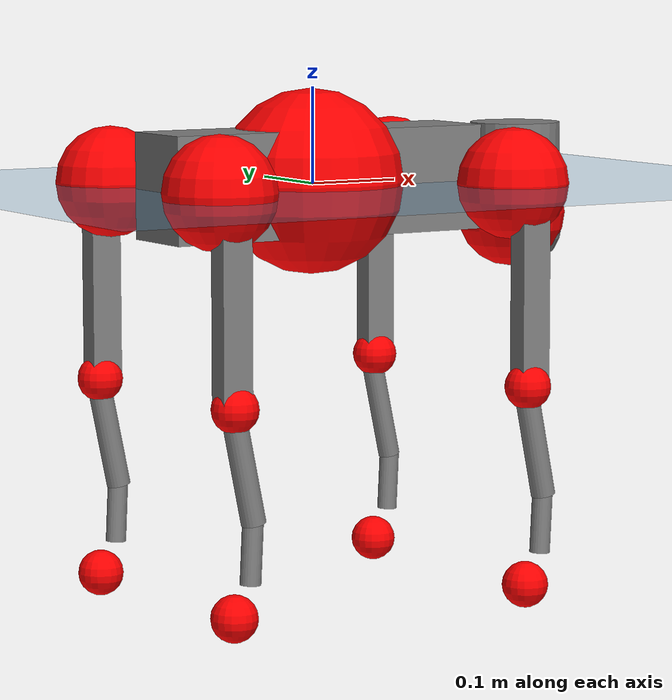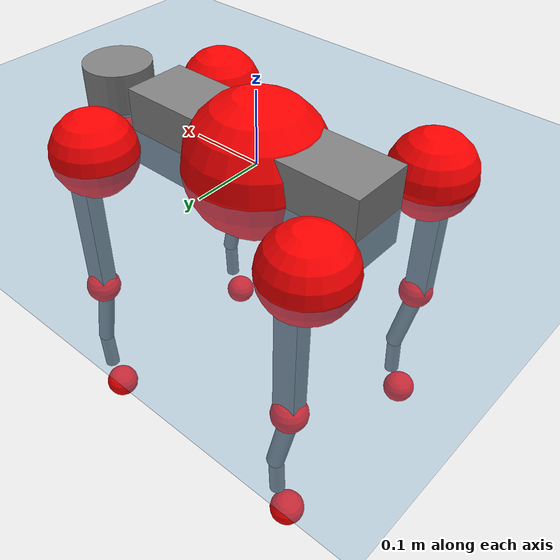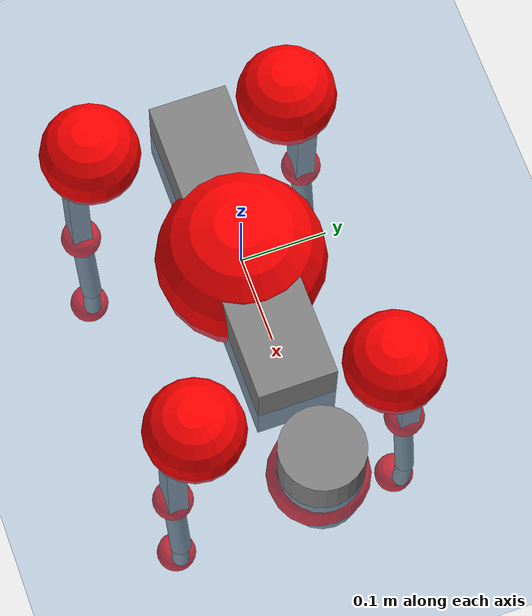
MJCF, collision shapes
<mujoco model="go2">
  <compiler angle="radian" assetdir="assets" balanceinertia="true" inertiafromgeom="false"/>

  <option timestep="0.005" density="1.2" viscosity="2e-05"/>

  <size nkey="1"/>

  <visual>
    <quality shadowsize="8192"/>
    <map shadowclip="0.5"/>
  </visual>

  <default>
    <default class="/">
      <geom contype="0" conaffinity="0" group="1" solref="-1000 -80"/>
      <site size="0.01 0.005 0.005" group="5"/>
      <general forcelimited="true" biastype="affine" gainprm="20" biasprm="0 -20 -0.5"/>
      <default class="go2">
        <joint armature="0.01" damping="0.01" frictionloss="0.2"/>
        <geom condim="1" margin="0.001"/>
        <default class="visual">
          <geom type="mesh" group="2"/>
        </default>
        <default class="collision">
          <geom group="3"/>
          <default class="foot">
            <geom size="0.022 0 0" condim="6" priority="1" friction="0.8 0.02 0.01" solimp="0.015 1 0.022"/>
          </default>
        </default>
        <default class="reward_collision_sphere">
          <geom group="5" rgba="1 0 0 1"/>
        </default>
      </default>
    </default>
  </default>

  <asset>
    <texture type="skybox" colorspace="auto" name="//unnamed_texture_0" builtin="gradient" rgb1="0.95 0.95 0.95" rgb2="0.95 0.95 0.95" width="100" height="600"/>
    <texture type="2d" colorspace="auto" name="texplane" builtin="checker" rgb1="0.345 0.575 0.748" rgb2="0.345 0.575 0.748" markrgb="1 1 1" width="512" height="512"/>
    <material name="MatPlane" class="/" texture="texplane" texuniform="true" texrepeat="2 2" specular="0.9"/>
    <material name="metal" class="/" rgba="0.9 0.95 0.95 1"/>
    <material name="black" class="/" rgba="0 0 0 1"/>
    <material name="white" class="/"/>
    <material name="gray" class="/" rgba="0.671705 0.692426 0.77427 1"/>
    <mesh name="base_0" class="/" file="base_0.obj"/>
    <mesh name="base_1" class="/" file="base_1.obj"/>
    <mesh name="base_2" class="/" file="base_2.obj"/>
    <mesh name="base_3" class="/" file="base_3.obj"/>
    <mesh name="base_4" class="/" file="base_4.obj"/>
    <mesh name="hip_0" class="/" file="hip_0.obj"/>
    <mesh name="hip_1" class="/" file="hip_1.obj"/>
    <mesh name="thigh_0" class="/" file="thigh_0.obj"/>
    <mesh name="thigh_1" class="/" file="thigh_1.obj"/>
    <mesh name="thigh_mirror_0" class="/" file="thigh_mirror_0.obj"/>
    <mesh name="thigh_mirror_1" class="/" file="thigh_mirror_1.obj"/>
    <mesh name="calf_0" class="/" file="calf_0.obj"/>
    <mesh name="calf_1" class="/" file="calf_1.obj"/>
    <mesh name="calf_mirror_0" class="/" file="calf_mirror_0.obj"/>
    <mesh name="calf_mirror_1" class="/" file="calf_mirror_1.obj"/>
    <mesh name="foot" class="/" file="foot.obj"/>
  </asset>

  <worldbody>
    <geom name="floor" class="/" size="100 100 0.125" type="plane" group="0" material="MatPlane"/>
    <light name="toplight_shadow" class="/" pos="0 0 5" dir="0.0990148 0.0990148 -0.990148" type="directional" ambient="0.04 0.04 0.04" diffuse="0.55 0.55 0.55" specular="0.12 0.12 0.12"/>
    <light name="toplight_fill" class="/" pos="0 0 5" dir="0.0990148 0.0990148 -0.990148" type="directional" castshadow="false" ambient="0.04 0.04 0.04" diffuse="0.3 0.3 0.3" specular="0.08 0.08 0.08"/>
    <body name="trunk" childclass="go2" pos="-0.00185899 0.000494651 0.00250914" quat="0.999999 -0.00130954 -0.000383015 0.000262653">
      <inertial pos="0.0200962 -0.00115638 -0.00811313" quat="0.00496347 0.710061 -0.00250376 0.704118" mass="6.15063" diaginertia="0.0629943 0.106056 0.0221194"/>
      <joint name="//unnamed_joint_0" type="free" armature="0" damping="0" frictionloss="0"/>
      <geom name="//unnamed_geom_1" class="visual" material="black" mesh="base_0"/>
      <geom name="//unnamed_geom_2" class="visual" material="black" mesh="base_1"/>
      <geom name="//unnamed_geom_3" class="visual" material="black" mesh="base_2"/>
      <geom name="//unnamed_geom_4" class="visual" material="white" mesh="base_3"/>
      <geom name="//unnamed_geom_5" class="visual" material="gray" mesh="base_4"/>
      <geom name="trunk_1" class="collision" size="0.181574 0.045128 0.0550224" type="box"/>
      <geom name="trunk_2" class="collision" size="0.0482652 0.0434387" pos="0.256599 0 0.00979518" type="cylinder"/>
      <geom name="trunk_3" class="collision" size="0.0453693" pos="0.263802 0 -0.0587711"/>
      <geom name="//unnamed_geom_9" class="reward_collision_sphere" size="0.0965305"/>
      <geom name="//unnamed_geom_10" class="reward_collision_sphere" size="0.0579183" pos="0.252098 0 -0.0440783"/>
      <site name="imu" pos="-0.0219553 0.00129459 0.0401948" size="0.00965305"/>
      <camera name="track" pos="0 -2.0321 0" quat="0.707107 0.707107 0 0" mode="trackcom"/>
      <camera name="ego_camera" pos="0.280909 0 0.0440783" quat="-0.5 -0.5 0.5 0.5"/>
      <body name="FL_hip" pos="0.171906 0.0457297 -0.00187064" quat="1 -1.14204e-05 -9.08068e-05 0.000156318">
        <inertial pos="-0.00498899 0.000168112 0.000666485" quat="0.496799 0.499373 0.505756 0.498025" mass="0.640599" diaginertia="0.000527361 0.000642908 0.000441515"/>
        <joint name="FL_hip_joint" pos="0 0 0" axis="0.999854 0.0142491 0.00945226" range="-1.04576 1.10256" armature="0.00916252" damping="0.0210974" frictionloss="0.170262"/>
        <geom name="//unnamed_geom_11" class="visual" material="metal" mesh="hip_0"/>
        <geom name="//unnamed_geom_12" class="visual" material="gray" mesh="hip_1"/>
        <geom name="//unnamed_geom_13" class="collision" size="0.044404 0.0193061" pos="0 0.0812838 0" quat="0.707107 0.707107 0 0" type="cylinder"/>
        <geom name="//unnamed_geom_14" class="reward_collision_sphere" size="0.0579183" pos="0 0.0711233 0"/>
        <body name="FL_thigh" pos="-0.00321463 0.096504 0.00253643" quat="1 -4.71956e-05 -0.000149008 0.000180637">
          <inertial pos="-0.0046056 -0.0221367 -0.0292875" quat="0.826332 0.0920353 -0.0205135 0.555233" mass="1.01457" diaginertia="0.00353996 0.00642466 0.000820126"/>
          <joint name="FL_thigh_joint" pos="0 0 0" axis="-0.00813983 0.999947 0.00631601" stiffness="0.00413218" range="-1.55288 3.53857" armature="0.0087336" damping="0.0146739" frictionloss="0.167048"/>
          <geom name="//unnamed_geom_15" class="visual" material="metal" mesh="thigh_0"/>
          <geom name="//unnamed_geom_16" class="visual" material="gray" mesh="thigh_1"/>
          <geom name="//unnamed_geom_17" class="collision" size="0.102805 0.011825 0.0164102" pos="0 0 -0.104319" quat="0.707107 0 0.707107 0" type="box"/>
          <body name="FL_calf" pos="-0.000659277 0.000485313 -0.21002" quat="1 -6.17266e-05 0.000410564 0.000513061">
            <inertial pos="0.00594884 0.000846687 -0.14098" quat="0.712932 0.00228145 -0.0030789 0.701223" mass="0.214999" diaginertia="0.000857785 0.00156011 4.81755e-05"/>
            <joint name="FL_calf_joint" pos="0 0 0" axis="0.00431145 0.999961 0.00776375" range="-2.67413 -0.848672" armature="0.0107412" damping="0.000546572" frictionloss="0.187991"/>
            <geom name="//unnamed_geom_18" class="visual" material="gray" mesh="calf_0"/>
            <geom name="//unnamed_geom_19" class="visual" material="black" mesh="calf_1"/>
            <geom name="FL_calf0" class="collision" size="0.0115837 0.0579183" pos="0.00720279 0 -0.0587711" quat="0.994493 0 -0.104807 0" type="cylinder"/>
            <geom name="//unnamed_geom_21" class="collision" size="0.0106184 0.0313724" pos="0.018007 0 -0.144969" quat="0.999688 0 0.0249974 0" type="cylinder"/>
            <geom name="//unnamed_geom_22" class="visual" pos="0 0 -0.208637" quat="1 0 0 0" material="black" mesh="foot"/>
            <geom name="FL_foot" class="foot" size="0.0166121" pos="-0.0018007 0 -0.208637"/>
            <geom name="//unnamed_geom_24" class="reward_collision_sphere" size="0.0241326"/>
            <geom name="//unnamed_geom_25" class="reward_collision_sphere" size="0.0241326" pos="-0.0018007 0 -0.208637"/>
            <site name="FL_foot" class="foot" pos="-0.0018007 0 -0.208637" size="0.00965305"/>
          </body>
        </body>
      </body>
      <body name="FR_hip" pos="0.174211 -0.0445011 -0.0018932" quat="1 -0.000156637 0.000176369 -0.000431109">
        <inertial pos="-0.00727749 -0.00042673 -0.00278248" quat="0.500497 0.50416 0.497831 0.497483" mass="0.620558" diaginertia="0.000516938 0.000653687 0.000426147"/>
        <joint name="FR_hip_joint" pos="0 0 0" axis="0.999978 0.00530895 -0.00397416" stiffness="0.0112021" range="-1.03326 1.04702" armature="0.00958376" damping="0.00262864" frictionloss="0.218279"/>
        <geom name="//unnamed_geom_26" class="visual" pos="0 3.18234e-10 1.36497e-08" quat="4.63268e-05 1 0 0" material="metal" mesh="hip_0"/>
        <geom name="//unnamed_geom_27" class="visual" pos="0 5.15895e-10 -3.37609e-08" quat="4.63268e-05 1 0 0" material="gray" mesh="hip_1"/>
        <geom name="//unnamed_geom_28" class="collision" size="0.044404 0.0193061" pos="0 -0.0812838 0" quat="0.707107 0.707107 0 0" type="cylinder"/>
        <geom name="//unnamed_geom_29" class="reward_collision_sphere" size="0.0579183" pos="0 -0.0711233 0"/>
        <body name="FR_thigh" pos="0.00285659 -0.0994598 -0.00026031" quat="1 5.69961e-05 -0.000301021 0.000387384">
          <inertial pos="-0.00347182 0.0205303 -0.0346511" quat="0.558859 -0.02691 0.0771995 0.825223" mass="1.04439" diaginertia="0.00336504 0.00614006 0.000783746"/>
          <joint name="FR_thigh_joint" pos="0 0 0" axis="0.00708504 -0.999964 -0.00458148" range="-3.44148 1.54229" armature="0.00857996" damping="0.0187631" frictionloss="0.219725"/>
          <geom name="//unnamed_geom_30" class="visual" material="metal" mesh="thigh_mirror_0"/>
          <geom name="//unnamed_geom_31" class="visual" material="gray" mesh="thigh_mirror_1"/>
          <geom name="//unnamed_geom_32" class="collision" size="0.102805 0.011825 0.0164102" pos="0 0 -0.104319" quat="0.707107 0 0.707107 0" type="box"/>
          <body name="FR_calf" pos="-0.00289426 -0.000922629 -0.208779" quat="0.999999 0.00100478 -0.000658757 0.000584947">
            <inertial pos="0.00378957 0.000790229 -0.138515" quat="0.70189 -0.00499352 0.00169169 0.712265" mass="0.229094" diaginertia="0.000931068 0.00156226 4.90958e-05"/>
            <joint name="FR_calf_joint" pos="0 0 0" axis="-0.00190608 -0.99999 -0.00399605" range="0.837216 2.66711" armature="0.0105067" damping="0.00796901" frictionloss="0.220042"/>
            <geom name="//unnamed_geom_33" class="visual" material="gray" mesh="calf_mirror_0"/>
            <geom name="//unnamed_geom_34" class="visual" material="black" mesh="calf_mirror_1"/>
            <geom name="FR_calf0" class="collision" size="0.012549 0.0579183" pos="0.00900349 0 -0.0587711" quat="0.995004 0 -0.0998334 0" type="cylinder"/>
            <geom name="//unnamed_geom_36" class="collision" size="0.0106184 0.0313724" pos="0.018007 0 -0.144969" quat="0.999688 0 0.0249974 0" type="cylinder"/>
            <geom name="//unnamed_geom_37" class="visual" pos="0 0 -0.208637" quat="1 0 0 0" material="black" mesh="foot"/>
            <geom name="FR_foot" class="foot" size="0.0209276" pos="-0.0018007 0 -0.208637"/>
            <geom name="//unnamed_geom_39" class="reward_collision_sphere" size="0.0241326"/>
            <geom name="//unnamed_geom_40" class="reward_collision_sphere" size="0.0241326" pos="-0.0018007 0 -0.208637"/>
            <site name="FR_foot" class="foot" pos="-0.0018007 0 -0.208637" size="0.00965305"/>
          </body>
        </body>
      </body>
      <body name="RL_hip" pos="-0.173238 0.0450192 -0.000589046" quat="1 -0.000259872 0.000175796 0.000659341">
        <inertial pos="0.00463598 0.00457652 0.00155729" quat="0.498811 0.498593 0.50016 0.502426" mass="0.61119" diaginertia="0.000513286 0.000633299 0.000417613"/>
        <joint name="RL_hip_joint" pos="0 0 0" axis="-0.999999 -0.000692978 0.000901522" range="-1.03933 1.09292" armature="0.0098692" damping="0.00942077" frictionloss="0.195632"/>
        <geom name="//unnamed_geom_41" class="visual" pos="6.89686e-10 0 1.35194e-07" quat="4.63268e-05 0 1 0" material="metal" mesh="hip_0"/>
        <geom name="//unnamed_geom_42" class="visual" pos="1.11806e-09 0 1.19898e-07" quat="4.63268e-05 0 1 0" material="gray" mesh="hip_1"/>
        <geom name="//unnamed_geom_43" class="collision" size="0.044404 0.0193061" pos="0 0.0812838 0" quat="0.707107 0.707107 0 0" type="cylinder"/>
        <geom name="//unnamed_geom_44" class="reward_collision_sphere" size="0.0579183" pos="0 0.0711233 0"/>
        <body name="RL_thigh" pos="-7.95086e-05 0.0938531 0.00170103" quat="0.999999 -0.00114684 0.00059875 -0.00022626">
          <inertial pos="-0.0021234 -0.0198213 -0.0317951" quat="0.829016 0.0849874 -0.0213742 0.552316" mass="0.973474" diaginertia="0.00345708 0.00632171 0.000795686"/>
          <joint name="RL_thigh_joint" pos="0 0 0" axis="0.00597543 0.999969 -0.00504812" range="-0.57726 4.49092" armature="0.0102052" damping="0" frictionloss="0.190595"/>
          <geom name="//unnamed_geom_45" class="visual" material="metal" mesh="thigh_0"/>
          <geom name="//unnamed_geom_46" class="visual" material="gray" mesh="thigh_1"/>
          <geom name="//unnamed_geom_47" class="collision" size="0.102805 0.011825 0.0164102" pos="0 0 -0.104319" quat="0.707107 0 0.707107 0" type="box"/>
          <body name="RL_calf" pos="-0.00238736 0.00148192 -0.211537" quat="1 0.000372221 -8.52521e-05 3.09859e-06">
            <inertial pos="0.00833035 0.000154414 -0.141006" quat="0.717798 0.00425622 -0.011419 0.696145" mass="0.21314" diaginertia="0.000841674 0.00157814 4.8458e-05"/>
            <joint name="RL_calf_joint" pos="0 0 0" axis="-0.00148536 0.999993 -0.00350021" stiffness="0.0121001" range="-2.7019 -0.879793" armature="0.00973217" damping="0.00856693" frictionloss="0.179969"/>
            <geom name="//unnamed_geom_48" class="visual" material="gray" mesh="calf_0"/>
            <geom name="//unnamed_geom_49" class="visual" material="black" mesh="calf_1"/>
            <geom name="RL_calf0" class="collision" size="0.012549 0.0579183" pos="0.00900349 0 -0.0587711" quat="0.995004 0 -0.0998334 0" type="cylinder"/>
            <geom name="//unnamed_geom_51" class="collision" size="0.0106184 0.0313724" pos="0.018007 0 -0.144969" quat="0.999688 0 0.0249974 0" type="cylinder"/>
            <geom name="//unnamed_geom_52" class="visual" pos="0 0 -0.208637" quat="1 0 0 0" material="black" mesh="foot"/>
            <geom name="RL_foot" class="foot" size="0.0197059" pos="-0.0018007 0 -0.208637"/>
            <geom name="//unnamed_geom_54" class="reward_collision_sphere" size="0.0241326"/>
            <geom name="//unnamed_geom_55" class="reward_collision_sphere" size="0.0241326" pos="-0.0018007 0 -0.208637"/>
            <site name="RL_foot" class="foot" pos="-0.0018007 0 -0.208637" size="0.00965305"/>
          </body>
        </body>
      </body>
      <body name="RR_hip" pos="-0.175301 -0.0475719 0.00352201" quat="1 0.000248136 0.000138699 0.000160797">
        <inertial pos="0.00224678 0.000868931 -1.88632e-05" quat="0.505124 0.493613 0.495368 0.505774" mass="0.627553" diaginertia="0.000532242 0.000648705 0.000436412"/>
        <joint name="RR_hip_joint" pos="0 0 0" axis="-0.999998 -0.00177692 -0.000163585" range="-1.06139 1.10343" armature="0.00831682" damping="0" frictionloss="0.190422"/>
        <geom name="//unnamed_geom_56" class="visual" pos="-6.85681e-10 3.18234e-10 1.21545e-07" quat="2.14617e-09 4.63268e-05 4.63268e-05 -1" material="metal" mesh="hip_0"/>
        <geom name="//unnamed_geom_57" class="visual" pos="-1.12797e-09 5.15895e-10 1.53659e-07" quat="2.14617e-09 4.63268e-05 4.63268e-05 -1" material="gray" mesh="hip_1"/>
        <geom name="//unnamed_geom_58" class="collision" size="0.044404 0.0193061" pos="0 -0.0812838 0" quat="0.707107 0.707107 0 0" type="cylinder"/>
        <geom name="//unnamed_geom_59" class="reward_collision_sphere" size="0.0579183" pos="0 -0.0711233 0"/>
        <body name="RR_thigh" pos="-0.000364139 -0.0949975 0.000160429" quat="1 0.000281966 2.48517e-05 0.000300429">
          <inertial pos="-0.00388413 0.0253831 -0.0303282" quat="0.550264 -0.0198492 0.083104 0.830608" mass="0.979404" diaginertia="0.00332914 0.00617172 0.000766085"/>
          <joint name="RR_thigh_joint" pos="0 0 0" axis="0.00221086 -0.99996 0.0086323" range="-4.48467 0.479048" armature="0.00923933" damping="0.0237333" frictionloss="0.190731"/>
          <geom name="//unnamed_geom_60" class="visual" material="metal" mesh="thigh_mirror_0"/>
          <geom name="//unnamed_geom_61" class="visual" material="gray" mesh="thigh_mirror_1"/>
          <geom name="//unnamed_geom_62" class="collision" size="0.102805 0.011825 0.0164102" pos="0 0 -0.104319" quat="0.707107 0 0.707107 0" type="box"/>
          <body name="RR_calf" pos="0.00299088 0.000420011 -0.210793" quat="1 2.30351e-05 -3.64925e-05 -6.63832e-06">
            <inertial pos="0.00705174 -0.00203248 -0.136757" quat="0.703823 -0.00713545 -0.00712365 0.710304" mass="0.214823" diaginertia="0.000859813 0.00158279 4.65245e-05"/>
            <joint name="RR_calf_joint" pos="0 0 0" axis="-0.0159864 -0.99987 -0.00193727" stiffness="0.00193407" range="0.849395 2.73464" armature="0.00953711" damping="0.00854095" frictionloss="0.219711"/>
            <geom name="//unnamed_geom_63" class="visual" material="gray" mesh="calf_mirror_0"/>
            <geom name="//unnamed_geom_64" class="visual" material="black" mesh="calf_mirror_1"/>
            <geom name="RR_calf0" class="collision" size="0.012549 0.0579183" pos="0.00900349 0 -0.0587711" quat="0.995004 0 -0.0998334 0" type="cylinder"/>
            <geom name="//unnamed_geom_66" class="collision" size="0.0106184 0.0313724" pos="0.018007 0 -0.144969" quat="0.999688 0 0.0249974 0" type="cylinder"/>
            <geom name="//unnamed_geom_67" class="visual" pos="0 0 -0.208637" quat="1 0 0 0" material="black" mesh="foot"/>
            <geom name="RR_foot" class="foot" size="0.0198037" pos="-0.0018007 0 -0.208637"/>
            <geom name="//unnamed_geom_69" class="reward_collision_sphere" size="0.0241326"/>
            <geom name="//unnamed_geom_70" class="reward_collision_sphere" size="0.0241326" pos="-0.0018007 0 -0.208637"/>
            <site name="RR_foot" class="foot" pos="-0.0018007 0 -0.208637" size="0.00965305"/>
          </body>
        </body>
      </body>
    </body>
  </worldbody>

  <contact>
    <pair class="/" geom1="floor" geom2="FL_foot" name="//unnamed_contact_0"/>
    <pair class="/" geom1="floor" geom2="FR_foot" name="//unnamed_contact_1"/>
    <pair class="/" geom1="floor" geom2="RL_foot" name="//unnamed_contact_2"/>
    <pair class="/" geom1="floor" geom2="RR_foot" name="//unnamed_contact_3"/>
  </contact>

  <actuator>
    <general name="FL_hip" class="/" joint="FL_hip_joint" forcerange="-21.3594 21.3594" gainprm="18.0866" biasprm="0 -18.0866 -0.450448"/>
    <general name="FL_thigh" class="/" joint="FL_thigh_joint" forcerange="-23.0244 23.0244" gainprm="18.0866" biasprm="0 -18.0866 -0.450448"/>
    <general name="FL_calf" class="/" joint="FL_calf_joint" forcerange="-39.6051 39.6051" gainprm="18.0866" biasprm="0 -18.0866 -0.450448"/>
    <general name="FR_hip" class="/" joint="FR_hip_joint" forcerange="-22.0677 22.0677" gainprm="18.0866" biasprm="0 -18.0866 -0.450448"/>
    <general name="FR_thigh" class="/" joint="FR_thigh_joint" forcerange="-24.7281 24.7281" gainprm="18.0866" biasprm="0 -18.0866 -0.450448"/>
    <general name="FR_calf" class="/" joint="FR_calf_joint" forcerange="-41.7875 41.7875" gainprm="18.0866" biasprm="0 -18.0866 -0.450448"/>
    <general name="RL_hip" class="/" joint="RL_hip_joint" forcerange="-22.7722 22.7722" gainprm="18.0866" biasprm="0 -18.0866 -0.450448"/>
    <general name="RL_thigh" class="/" joint="RL_thigh_joint" forcerange="-21.1627 21.1627" gainprm="18.0866" biasprm="0 -18.0866 -0.450448"/>
    <general name="RL_calf" class="/" joint="RL_calf_joint" forcerange="-48.0493 48.0493" gainprm="18.0866" biasprm="0 -18.0866 -0.450448"/>
    <general name="RR_hip" class="/" joint="RR_hip_joint" forcerange="-22.6601 22.6601" gainprm="18.0866" biasprm="0 -18.0866 -0.450448"/>
    <general name="RR_thigh" class="/" joint="RR_thigh_joint" forcerange="-23.765 23.765" gainprm="18.0866" biasprm="0 -18.0866 -0.450448"/>
    <general name="RR_calf" class="/" joint="RR_calf_joint" forcerange="-46.9787 46.9787" gainprm="18.0866" biasprm="0 -18.0866 -0.450448"/>
  </actuator>

  <sensor>
    <gyro site="imu" name="imu_angular_velocity"/>
    <velocimeter site="imu" name="imu_linear_velocity"/>
    <framelinvel objtype="site" objname="FL_foot" name="FL_foot_global_linear_velocity"/>
    <framelinvel objtype="site" objname="FR_foot" name="FR_foot_global_linear_velocity"/>
    <framelinvel objtype="site" objname="RL_foot" name="RL_foot_global_linear_velocity"/>
    <framelinvel objtype="site" objname="RR_foot" name="RR_foot_global_linear_velocity"/>
  </sensor>

  <keyframe>
    <key name="home" qpos="0 0 0.325 1 0 0 0 0.1 0.8 -1.5 -0.1 -0.8 1.5 -0.1 0.8 -1.5 0.1 -0.8 1.5"/>
  </keyframe>
</mujoco>
